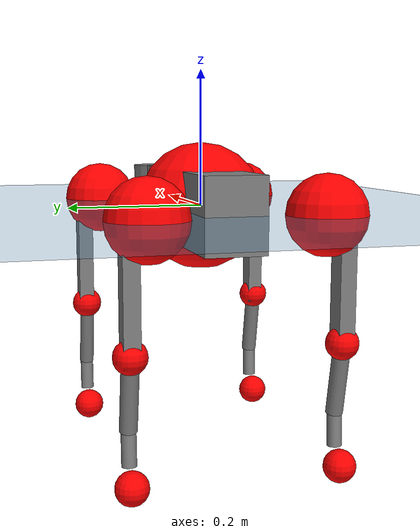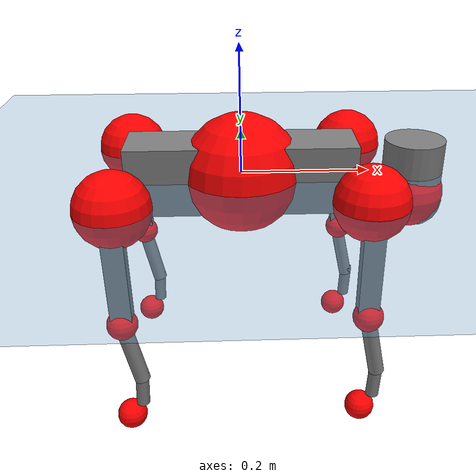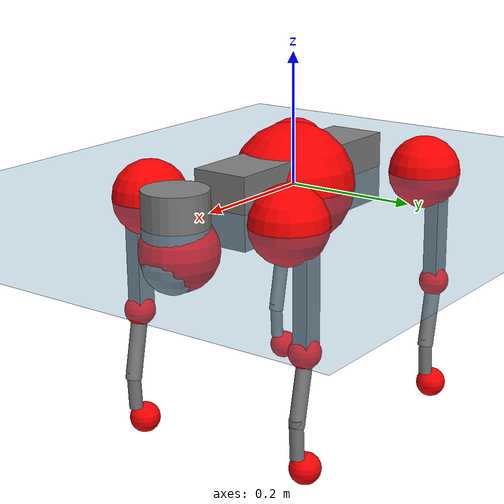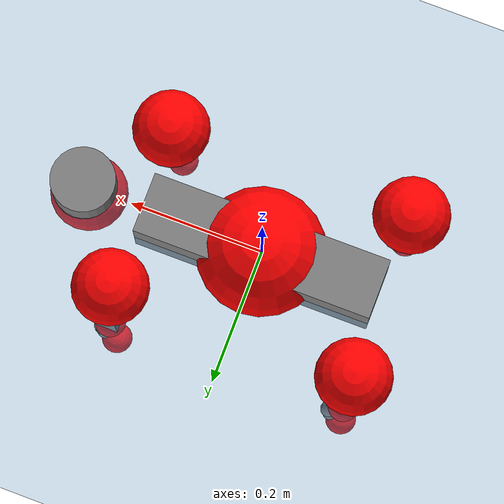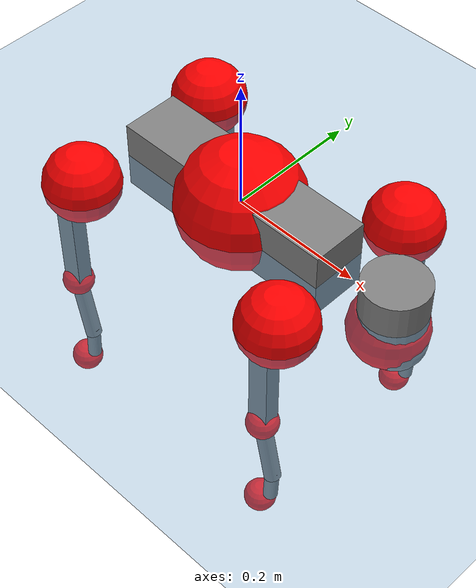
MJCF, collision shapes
<mujoco model="go2">
  <compiler angle="radian" assetdir="assets" balanceinertia="true" inertiafromgeom="false"/>

  <option timestep="0.005" density="1.2" viscosity="2e-05"/>

  <size nkey="1"/>

  <visual>
    <quality shadowsize="8192"/>
    <map shadowclip="0.5"/>
  </visual>

  <default>
    <default class="/">
      <geom contype="0" conaffinity="0" group="1" solref="-1000 -80"/>
      <site size="0.01 0.005 0.005" group="5"/>
      <general forcelimited="true" biastype="affine" gainprm="20" biasprm="0 -20 -0.5"/>
      <default class="go2">
        <joint armature="0.01" damping="0.01" frictionloss="0.2"/>
        <geom condim="1" margin="0.001"/>
        <default class="visual">
          <geom type="mesh" group="2"/>
        </default>
        <default class="collision">
          <geom group="3"/>
          <default class="foot">
            <geom size="0.022 0 0" condim="6" priority="1" friction="0.8 0.02 0.01" solimp="0.015 1 0.022"/>
          </default>
        </default>
        <default class="reward_collision_sphere">
          <geom group="5" rgba="1 0 0 1"/>
        </default>
      </default>
    </default>
  </default>

  <asset>
    <texture type="skybox" colorspace="auto" name="//unnamed_texture_0" builtin="gradient" rgb1="0.95 0.95 0.95" rgb2="0.95 0.95 0.95" width="100" height="600"/>
    <texture type="2d" colorspace="auto" name="texplane" builtin="checker" rgb1="0.345 0.575 0.748" rgb2="0.345 0.575 0.748" markrgb="1 1 1" width="512" height="512"/>
    <material name="MatPlane" class="/" texture="texplane" texuniform="true" texrepeat="2 2" specular="0.9"/>
    <material name="metal" class="/" rgba="0.9 0.95 0.95 1"/>
    <material name="black" class="/" rgba="0 0 0 1"/>
    <material name="white" class="/"/>
    <material name="gray" class="/" rgba="0.671705 0.692426 0.77427 1"/>
    <mesh name="base_0" class="/" file="base_0.obj"/>
    <mesh name="base_1" class="/" file="base_1.obj"/>
    <mesh name="base_2" class="/" file="base_2.obj"/>
    <mesh name="base_3" class="/" file="base_3.obj"/>
    <mesh name="base_4" class="/" file="base_4.obj"/>
    <mesh name="hip_0" class="/" file="hip_0.obj"/>
    <mesh name="hip_1" class="/" file="hip_1.obj"/>
    <mesh name="thigh_0" class="/" file="thigh_0.obj"/>
    <mesh name="thigh_1" class="/" file="thigh_1.obj"/>
    <mesh name="thigh_mirror_0" class="/" file="thigh_mirror_0.obj"/>
    <mesh name="thigh_mirror_1" class="/" file="thigh_mirror_1.obj"/>
    <mesh name="calf_0" class="/" file="calf_0.obj"/>
    <mesh name="calf_1" class="/" file="calf_1.obj"/>
    <mesh name="calf_mirror_0" class="/" file="calf_mirror_0.obj"/>
    <mesh name="calf_mirror_1" class="/" file="calf_mirror_1.obj"/>
    <mesh name="foot" class="/" file="foot.obj"/>
  </asset>

  <worldbody>
    <geom name="floor" class="/" size="100 100 0.125" type="plane" group="0" material="MatPlane"/>
    <light name="toplight_shadow" class="/" pos="0 0 5" dir="0.0990148 0.0990148 -0.990148" type="directional" ambient="0.04 0.04 0.04" diffuse="0.55 0.55 0.55" specular="0.12 0.12 0.12"/>
    <light name="toplight_fill" class="/" pos="0 0 5" dir="0.0990148 0.0990148 -0.990148" type="directional" castshadow="false" ambient="0.04 0.04 0.04" diffuse="0.3 0.3 0.3" specular="0.08 0.08 0.08"/>
    <body name="trunk" childclass="go2" pos="0.000543906 -0.000101728 -0.00037221" quat="1 8.47906e-05 4.57037e-05 0.000235609">
      <inertial pos="0.0189588 -0.0016077 -0.00546445" quat="-0.00189391 0.710152 -0.00317407 0.704039" mass="5.80761" diaginertia="0.083969 0.130143 0.0100091"/>
      <joint name="//unnamed_joint_0" type="free" armature="0" damping="0" frictionloss="0"/>
      <geom name="//unnamed_geom_1" class="visual" material="black" mesh="base_0"/>
      <geom name="//unnamed_geom_2" class="visual" material="black" mesh="base_1"/>
      <geom name="//unnamed_geom_3" class="visual" material="black" mesh="base_2"/>
      <geom name="//unnamed_geom_4" class="visual" material="white" mesh="base_3"/>
      <geom name="//unnamed_geom_5" class="visual" material="gray" mesh="base_4"/>
      <geom name="trunk_1" class="collision" size="0.178087 0.0442613 0.0539656" type="box"/>
      <geom name="trunk_2" class="collision" size="0.0473383 0.0426044" pos="0.271176 0 0.00834564" type="cylinder"/>
      <geom name="trunk_3" class="collision" size="0.044498" pos="0.278788 0 -0.0500739"/>
      <geom name="//unnamed_geom_9" class="reward_collision_sphere" size="0.0946765"/>
      <geom name="//unnamed_geom_10" class="reward_collision_sphere" size="0.0568059" pos="0.266418 0 -0.0375554"/>
      <site name="imu" pos="-0.0356173 -0.00167312 0.0433449" size="0.00946765"/>
      <camera name="track" pos="0 -2.10848 0" quat="0.707107 0.707107 0 0" mode="trackcom"/>
      <camera name="ego_camera" pos="0.296866 0 0.0375554" quat="-0.5 -0.5 0.5 0.5"/>
      <body name="FL_hip" pos="0.183944 0.0501417 0.000913045" quat="1 4.54614e-05 4.12069e-05 -0.000318487">
        <inertial pos="-0.00334393 0.00292316 -0.000748912" quat="0.496835 0.49931 0.504662 0.49916" mass="0.56206" diaginertia="0.000672338 0.000778694 0.000191829"/>
        <joint name="FL_hip_joint" pos="0 0 0" axis="0.999951 -0.00135058 0.00983564" stiffness="0.00279257" range="-1.06 1.03982" armature="0.010449" damping="0.0014129" frictionloss="0.189796"/>
        <geom name="//unnamed_geom_11" class="visual" material="metal" mesh="hip_0"/>
        <geom name="//unnamed_geom_12" class="visual" material="gray" mesh="hip_1"/>
        <geom name="//unnamed_geom_13" class="collision" size="0.0435512 0.0189353" pos="0 0.084339 0" quat="0.707107 0.707107 0 0" type="cylinder"/>
        <geom name="//unnamed_geom_14" class="reward_collision_sphere" size="0.0568059" pos="0 0.0737966 0"/>
        <body name="FL_thigh" pos="-0.000871648 0.101653 0.00192807" quat="1 -0.000147268 -0.000371687 -0.000197097">
          <inertial pos="-0.00475599 -0.0232652 -0.0254765" quat="0.827495 0.0854818 -0.0218111 0.554499" mass="0.980899" diaginertia="0.00455854 0.00764475 0.000357657"/>
          <joint name="FL_thigh_joint" pos="0 0 0" axis="0.00106521 0.999998 -0.00160289" range="-1.55649 3.47679" armature="0.00949741" damping="0.0145679" frictionloss="0.174055"/>
          <geom name="//unnamed_geom_15" class="visual" material="metal" mesh="thigh_0"/>
          <geom name="//unnamed_geom_16" class="visual" material="gray" mesh="thigh_1"/>
          <geom name="//unnamed_geom_17" class="collision" size="0.10083 0.0115979 0.016095" pos="0 0 -0.0888811" quat="0.707107 0 0.707107 0" type="box"/>
          <body name="FL_calf" pos="0.000351218 -0.00187561 -0.180206" quat="1 -0.00013039 -0.000408449 -0.000268823">
            <inertial pos="0.00671761 -0.000749919 -0.116643" quat="0.711449 0.00476841 -0.0040313 0.70271" mass="0.205912" diaginertia="0.00116904 0.00189923 2.17562e-05"/>
            <joint name="FL_calf_joint" pos="0 0 0" axis="-0.00898137 0.999959 0.00137175" stiffness="0.000435379" range="-2.72802 -0.857111" armature="0.00914635" damping="0" frictionloss="0.189378"/>
            <geom name="//unnamed_geom_18" class="visual" material="gray" mesh="calf_0"/>
            <geom name="//unnamed_geom_19" class="visual" material="black" mesh="calf_1"/>
            <geom name="FL_calf0" class="collision" size="0.0113612 0.0568059" pos="0.00761195 0 -0.0500739" quat="0.994493 0 -0.104807 0" type="cylinder"/>
            <geom name="//unnamed_geom_21" class="collision" size="0.0104144 0.0307699" pos="0.0190299 0 -0.123516" quat="0.999688 0 0.0249974 0" type="cylinder"/>
            <geom name="//unnamed_geom_22" class="visual" pos="0 0 -0.177762" quat="1 0 0 0" material="black" mesh="foot"/>
            <geom name="FL_foot" class="foot" size="0.018181" pos="-0.00190299 0 -0.177762"/>
            <geom name="//unnamed_geom_24" class="reward_collision_sphere" size="0.0236691"/>
            <geom name="//unnamed_geom_25" class="reward_collision_sphere" size="0.0236691" pos="-0.00190299 0 -0.177762"/>
            <site name="FL_foot" class="foot" pos="-0.00190299 0 -0.177762" size="0.00946765"/>
          </body>
        </body>
      </body>
      <body name="FR_hip" pos="0.184579 -0.0485966 0.000929657" quat="1 -2.10568e-05 -0.000118738 1.22923e-05">
        <inertial pos="-0.00342332 -0.00254312 0.000219963" quat="0.49849 0.506698 0.498559 0.496188" mass="0.579326" diaginertia="0.0006966 0.000771528 0.000193713"/>
        <joint name="FR_hip_joint" pos="0 0 0" axis="0.999983 -0.00283936 -0.00502365" stiffness="0.00257872" range="-1.08425 1.05593" armature="0.00873915" damping="0.0198899" frictionloss="0.173812"/>
        <geom name="//unnamed_geom_26" class="visual" pos="0 1.91371e-09 8.20828e-08" quat="4.63268e-05 1 0 0" material="metal" mesh="hip_0"/>
        <geom name="//unnamed_geom_27" class="visual" pos="0 3.10235e-09 -2.03022e-07" quat="4.63268e-05 1 0 0" material="gray" mesh="hip_1"/>
        <geom name="//unnamed_geom_28" class="collision" size="0.0435512 0.0189353" pos="0 -0.084339 0" quat="0.707107 0.707107 0 0" type="cylinder"/>
        <geom name="//unnamed_geom_29" class="reward_collision_sphere" size="0.0568059" pos="0 -0.0737966 0"/>
        <body name="FR_thigh" pos="0.00132604 -0.0985849 3.80185e-05" quat="1 -5.37089e-05 -8.65251e-05 2.63857e-05">
          <inertial pos="-0.00340925 0.0239796 -0.0277398" quat="0.546674 -0.024519 0.0847854 0.832681" mass="0.943583" diaginertia="0.00462344 0.00752718 0.000348404"/>
          <joint name="FR_thigh_joint" pos="0 0 0" axis="0.0063312 -0.999973 -0.00370928" stiffness="0.00127735" range="-3.44705 1.57483" armature="0.00959275" damping="0.00216525" frictionloss="0.212415"/>
          <geom name="//unnamed_geom_30" class="visual" material="metal" mesh="thigh_mirror_0"/>
          <geom name="//unnamed_geom_31" class="visual" material="gray" mesh="thigh_mirror_1"/>
          <geom name="//unnamed_geom_32" class="collision" size="0.10083 0.0115979 0.016095" pos="0 0 -0.0888811" quat="0.707107 0 0.707107 0" type="box"/>
          <body name="FR_calf" pos="0.00153163 -0.00214945 -0.178448" quat="1 -1.74964e-05 0.000156131 -2.12068e-05">
            <inertial pos="0.00599173 0.0005182 -0.116395" quat="0.704278 -0.00494741 0.00269218 0.709902" mass="0.204557" diaginertia="0.00113191 0.00188311 2.16274e-05"/>
            <joint name="FR_calf_joint" pos="0 0 0" axis="-0.00116276 -0.999999 -0.000572311" stiffness="0.000750727" range="0.841791 2.72642" armature="0.00992708" damping="0.0111008" frictionloss="0.169457"/>
            <geom name="//unnamed_geom_33" class="visual" material="gray" mesh="calf_mirror_0"/>
            <geom name="//unnamed_geom_34" class="visual" material="black" mesh="calf_mirror_1"/>
            <geom name="FR_calf0" class="collision" size="0.0123079 0.0568059" pos="0.00951493 0 -0.0500739" quat="0.995004 0 -0.0998334 0" type="cylinder"/>
            <geom name="//unnamed_geom_36" class="collision" size="0.0104144 0.0307699" pos="0.0190299 0 -0.123516" quat="0.999688 0 0.0249974 0" type="cylinder"/>
            <geom name="//unnamed_geom_37" class="visual" pos="0 0 -0.177762" quat="1 0 0 0" material="black" mesh="foot"/>
            <geom name="FR_foot" class="foot" size="0.0201318" pos="-0.00190299 0 -0.177762"/>
            <geom name="//unnamed_geom_39" class="reward_collision_sphere" size="0.0236691"/>
            <geom name="//unnamed_geom_40" class="reward_collision_sphere" size="0.0236691" pos="-0.00190299 0 -0.177762"/>
            <site name="FR_foot" class="foot" pos="-0.00190299 0 -0.177762" size="0.00946765"/>
          </body>
        </body>
      </body>
      <body name="RL_hip" pos="-0.186233 0.0483992 -0.000850665" quat="1 9.60318e-05 -1.95494e-05 8.02508e-05">
        <inertial pos="0.00416653 0.0042826 0.000765549" quat="0.50584 0.498473 0.497063 0.498578" mass="0.570552" diaginertia="0.00068602 0.000783124 0.000187116"/>
        <joint name="RL_hip_joint" pos="0 0 0" axis="-0.999847 -0.00525718 0.016692" stiffness="0.00442812" range="-1.06982 0.997748" armature="0.00857839" damping="0.00781364" frictionloss="0.188693"/>
        <geom name="//unnamed_geom_41" class="visual" pos="-1.01864e-09 0 -1.99676e-07" quat="4.63268e-05 0 1 0" material="metal" mesh="hip_0"/>
        <geom name="//unnamed_geom_42" class="visual" pos="-1.65133e-09 0 -1.77085e-07" quat="4.63268e-05 0 1 0" material="gray" mesh="hip_1"/>
        <geom name="//unnamed_geom_43" class="collision" size="0.0435512 0.0189353" pos="0 0.084339 0" quat="0.707107 0.707107 0 0" type="cylinder"/>
        <geom name="//unnamed_geom_44" class="reward_collision_sphere" size="0.0568059" pos="0 0.0737966 0"/>
        <body name="RL_thigh" pos="-2.413e-06 0.0976716 0.00031948" quat="1 3.05933e-05 3.83994e-05 -5.74424e-05">
          <inertial pos="-0.00366976 -0.0220996 -0.0276649" quat="0.830135 0.0833548 -0.0180748 0.551" mass="0.976249" diaginertia="0.00464259 0.00761774 0.000351417"/>
          <joint name="RL_thigh_joint" pos="0 0 0" axis="-0.0053579 0.999967 0.00603699" stiffness="0.00251996" range="-0.527879 4.53046" armature="0.00979501" damping="0.00679429" frictionloss="0.179765"/>
          <geom name="//unnamed_geom_45" class="visual" material="metal" mesh="thigh_0"/>
          <geom name="//unnamed_geom_46" class="visual" material="gray" mesh="thigh_1"/>
          <geom name="//unnamed_geom_47" class="collision" size="0.10083 0.0115979 0.016095" pos="0 0 -0.0888811" quat="0.707107 0 0.707107 0" type="box"/>
          <body name="RL_calf" pos="0.00035573 2.68696e-05 -0.176835" quat="1 -0.000126537 -0.000261051 0.000512243">
            <inertial pos="0.00605614 -0.000508641 -0.118272" quat="0.708992 0.00517609 -0.0157175 0.705023" mass="0.204967" diaginertia="0.0011682 0.00191662 2.09002e-05"/>
            <joint name="RL_calf_joint" pos="0 0 0" axis="0.0100169 0.999928 0.00655999" stiffness="0.00211998" range="-2.7286 -0.833507" armature="0.00909398" damping="0.00375243" frictionloss="0.190726"/>
            <geom name="//unnamed_geom_48" class="visual" material="gray" mesh="calf_0"/>
            <geom name="//unnamed_geom_49" class="visual" material="black" mesh="calf_1"/>
            <geom name="RL_calf0" class="collision" size="0.0123079 0.0568059" pos="0.00951493 0 -0.0500739" quat="0.995004 0 -0.0998334 0" type="cylinder"/>
            <geom name="//unnamed_geom_51" class="collision" size="0.0104144 0.0307699" pos="0.0190299 0 -0.123516" quat="0.999688 0 0.0249974 0" type="cylinder"/>
            <geom name="//unnamed_geom_52" class="visual" pos="0 0 -0.177762" quat="1 0 0 0" material="black" mesh="foot"/>
            <geom name="RL_foot" class="foot" size="0.0187625" pos="-0.00190299 0 -0.177762"/>
            <geom name="//unnamed_geom_54" class="reward_collision_sphere" size="0.0236691"/>
            <geom name="//unnamed_geom_55" class="reward_collision_sphere" size="0.0236691" pos="-0.00190299 0 -0.177762"/>
            <site name="RL_foot" class="foot" pos="-0.00190299 0 -0.177762" size="0.00946765"/>
          </body>
        </body>
      </body>
      <body name="RR_hip" pos="-0.183356 -0.0517719 -0.000474682" quat="1 0.000487713 0.000153874 3.68193e-05">
        <inertial pos="0.00316398 -0.00161524 0.00143236" quat="0.502614 0.496159 0.497047 0.504132" mass="0.581279" diaginertia="0.000695154 0.000781999 0.000190826"/>
        <joint name="RR_hip_joint" pos="0 0 0" axis="-1 5.64854e-05 0.000479622" range="-1.07198 1.09152" armature="0.00925073" damping="0.00140991" frictionloss="0.191083"/>
        <geom name="//unnamed_geom_56" class="visual" pos="1.02219e-09 1.91371e-09 -2.81759e-07" quat="2.14617e-09 4.63268e-05 4.63268e-05 -1" material="metal" mesh="hip_0"/>
        <geom name="//unnamed_geom_57" class="visual" pos="1.64254e-09 3.10235e-09 2.59376e-08" quat="2.14617e-09 4.63268e-05 4.63268e-05 -1" material="gray" mesh="hip_1"/>
        <geom name="//unnamed_geom_58" class="collision" size="0.0435512 0.0189353" pos="0 -0.084339 0" quat="0.707107 0.707107 0 0" type="cylinder"/>
        <geom name="//unnamed_geom_59" class="reward_collision_sphere" size="0.0568059" pos="0 -0.0737966 0"/>
        <body name="RR_thigh" pos="0.000763951 -0.100618 0.000894862" quat="1 4.41654e-05 2.17196e-05 0.000197679">
          <inertial pos="-0.00300089 0.0239583 -0.0274122" quat="0.551524 -0.020022 0.0849356 0.829582" mass="0.923298" diaginertia="0.00442404 0.00738099 0.000343619"/>
          <joint name="RR_thigh_joint" pos="0 0 0" axis="0.013037 -0.999914 0.00103979" stiffness="0.000828268" range="-4.53566 0.529236" armature="0.00994494" damping="0.0219601" frictionloss="0.189546"/>
          <geom name="//unnamed_geom_60" class="visual" material="metal" mesh="thigh_mirror_0"/>
          <geom name="//unnamed_geom_61" class="visual" material="gray" mesh="thigh_mirror_1"/>
          <geom name="//unnamed_geom_62" class="collision" size="0.10083 0.0115979 0.016095" pos="0 0 -0.0888811" quat="0.707107 0 0.707107 0" type="box"/>
          <body name="RR_calf" pos="-0.00119214 0.000284078 -0.179585" quat="1 -0.000182665 -0.000377479 -0.000110046">
            <inertial pos="0.00682606 0.000607686 -0.117875" quat="0.705191 -0.00203443 0.0072227 0.708978" mass="0.207358" diaginertia="0.00117573 0.00194738 2.16657e-05"/>
            <joint name="RR_calf_joint" pos="0 0 0" axis="-0.00353377 -0.999989 0.00300443" stiffness="0.00140344" range="0.834959 2.74352" armature="0.00847244" damping="0.0035731" frictionloss="0.189624"/>
            <geom name="//unnamed_geom_63" class="visual" material="gray" mesh="calf_mirror_0"/>
            <geom name="//unnamed_geom_64" class="visual" material="black" mesh="calf_mirror_1"/>
            <geom name="RR_calf0" class="collision" size="0.0123079 0.0568059" pos="0.00951493 0 -0.0500739" quat="0.995004 0 -0.0998334 0" type="cylinder"/>
            <geom name="//unnamed_geom_66" class="collision" size="0.0104144 0.0307699" pos="0.0190299 0 -0.123516" quat="0.999688 0 0.0249974 0" type="cylinder"/>
            <geom name="//unnamed_geom_67" class="visual" pos="0 0 -0.177762" quat="1 0 0 0" material="black" mesh="foot"/>
            <geom name="RR_foot" class="foot" size="0.0216456" pos="-0.00190299 0 -0.177762"/>
            <geom name="//unnamed_geom_69" class="reward_collision_sphere" size="0.0236691"/>
            <geom name="//unnamed_geom_70" class="reward_collision_sphere" size="0.0236691" pos="-0.00190299 0 -0.177762"/>
            <site name="RR_foot" class="foot" pos="-0.00190299 0 -0.177762" size="0.00946765"/>
          </body>
        </body>
      </body>
    </body>
  </worldbody>

  <contact>
    <pair class="/" geom1="floor" geom2="FL_foot" name="//unnamed_contact_0"/>
    <pair class="/" geom1="floor" geom2="FR_foot" name="//unnamed_contact_1"/>
    <pair class="/" geom1="floor" geom2="RL_foot" name="//unnamed_contact_2"/>
    <pair class="/" geom1="floor" geom2="RR_foot" name="//unnamed_contact_3"/>
  </contact>

  <actuator>
    <general name="FL_hip" class="/" joint="FL_hip_joint" forcerange="-22.2987 22.2987" gainprm="18.7984" biasprm="0 -18.7984 -0.485216"/>
    <general name="FL_thigh" class="/" joint="FL_thigh_joint" forcerange="-22.7386 22.7386" gainprm="18.7984" biasprm="0 -18.7984 -0.485216"/>
    <general name="FL_calf" class="/" joint="FL_calf_joint" forcerange="-43.8283 43.8283" gainprm="18.7984" biasprm="0 -18.7984 -0.485216"/>
    <general name="FR_hip" class="/" joint="FR_hip_joint" forcerange="-22.4905 22.4905" gainprm="18.7984" biasprm="0 -18.7984 -0.485216"/>
    <general name="FR_thigh" class="/" joint="FR_thigh_joint" forcerange="-21.6929 21.6929" gainprm="18.7984" biasprm="0 -18.7984 -0.485216"/>
    <general name="FR_calf" class="/" joint="FR_calf_joint" forcerange="-40.3165 40.3165" gainprm="18.7984" biasprm="0 -18.7984 -0.485216"/>
    <general name="RL_hip" class="/" joint="RL_hip_joint" forcerange="-22.4539 22.4539" gainprm="18.7984" biasprm="0 -18.7984 -0.485216"/>
    <general name="RL_thigh" class="/" joint="RL_thigh_joint" forcerange="-21.1022 21.1022" gainprm="18.7984" biasprm="0 -18.7984 -0.485216"/>
    <general name="RL_calf" class="/" joint="RL_calf_joint" forcerange="-43.7598 43.7598" gainprm="18.7984" biasprm="0 -18.7984 -0.485216"/>
    <general name="RR_hip" class="/" joint="RR_hip_joint" forcerange="-23.2926 23.2926" gainprm="18.7984" biasprm="0 -18.7984 -0.485216"/>
    <general name="RR_thigh" class="/" joint="RR_thigh_joint" forcerange="-20.6575 20.6575" gainprm="18.7984" biasprm="0 -18.7984 -0.485216"/>
    <general name="RR_calf" class="/" joint="RR_calf_joint" forcerange="-45.5133 45.5133" gainprm="18.7984" biasprm="0 -18.7984 -0.485216"/>
  </actuator>

  <sensor>
    <gyro site="imu" name="imu_angular_velocity"/>
    <velocimeter site="imu" name="imu_linear_velocity"/>
    <framelinvel objtype="site" objname="FL_foot" name="FL_foot_global_linear_velocity"/>
    <framelinvel objtype="site" objname="FR_foot" name="FR_foot_global_linear_velocity"/>
    <framelinvel objtype="site" objname="RL_foot" name="RL_foot_global_linear_velocity"/>
    <framelinvel objtype="site" objname="RR_foot" name="RR_foot_global_linear_velocity"/>
  </sensor>

  <keyframe>
    <key name="home" qpos="0 0 0.325 1 0 0 0 0.1 0.8 -1.5 -0.1 -0.8 1.5 -0.1 0.8 -1.5 0.1 -0.8 1.5"/>
  </keyframe>
</mujoco>
